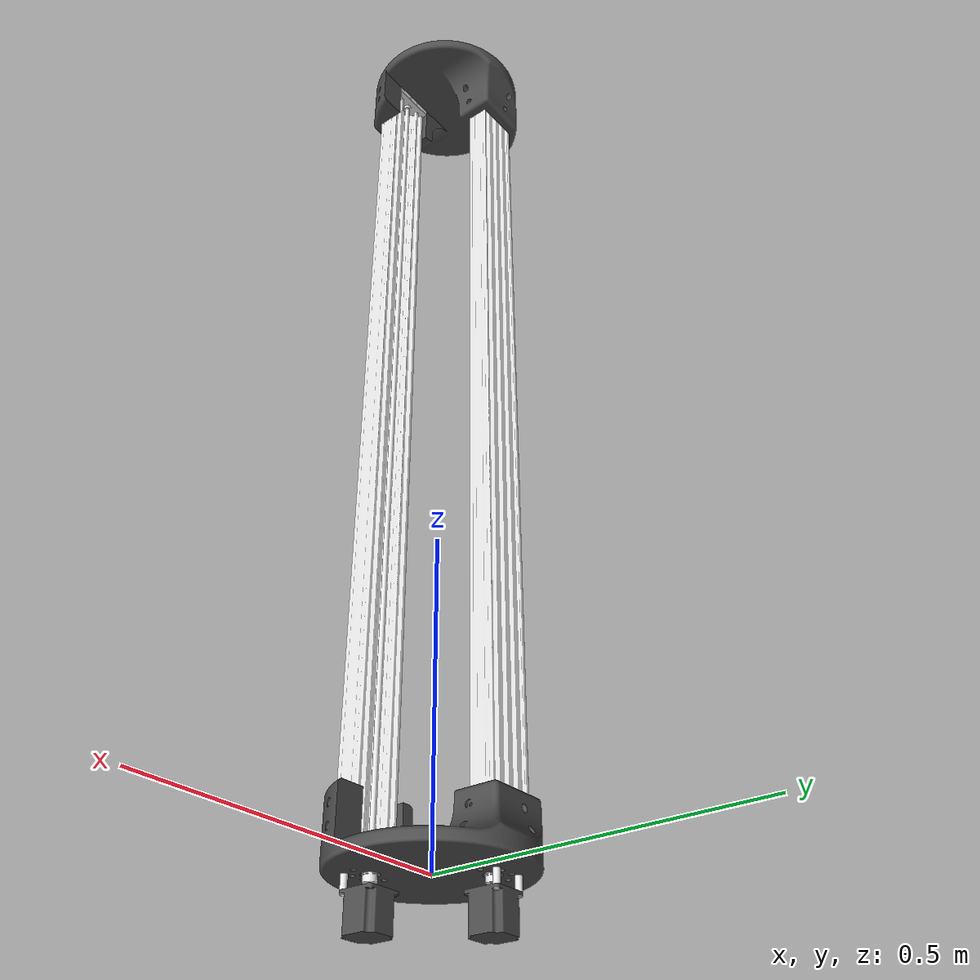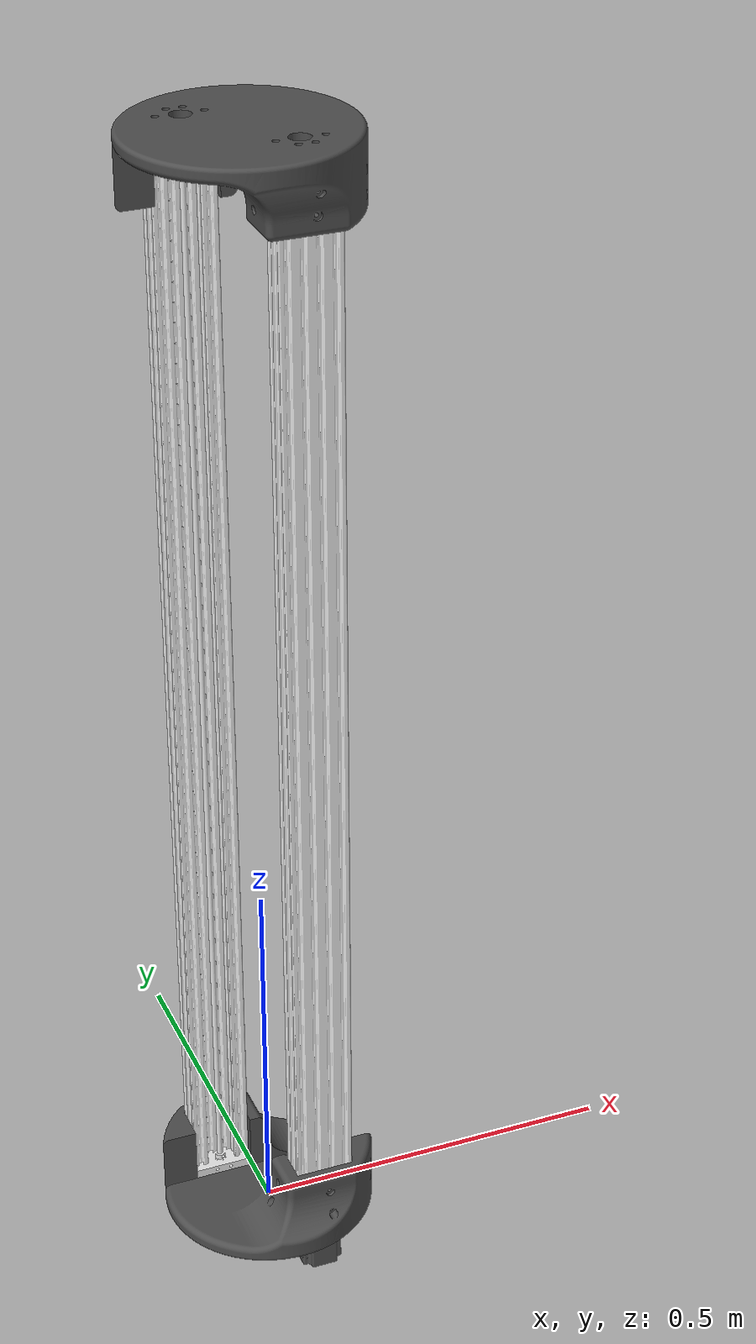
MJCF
<mujoco model="VerticalArm">
  <default>
    <default class="visual">
      <geom group="2" type="mesh" contype="0" conaffinity="0"/>
    </default>
    <default class="collision">
      <geom group="3" type="mesh"/>
    </default>
  </default>
  <asset>
    <material name="0.301961_0.301961_0.301961_0.000000_0.021" specular="0.0" shininess="0.0" rgba="0.302000 0.302000 0.302000 1.000000"/>
    <material name="0.301961_0.301961_0.301961_0.000000_0.022" specular="0.0" shininess="0.0" rgba="0.302000 0.302000 0.302000 1.000000"/>
    <material name="0.301961_0.301961_0.301961_0.000000_0.023" specular="0.0" shininess="0.0" rgba="0.302000 0.302000 0.302000 1.000000"/>
    <material name="0.301961_0.301961_0.301961_0.000000_0.024" specular="0.0" shininess="0.0" rgba="0.302000 0.302000 0.302000 1.000000"/>
    <material name="0.901961_0.901961_0.901961_0.000000_0.013" specular="0.0" shininess="0.0" rgba="0.902000 0.902000 0.902000 1.000000"/>
    <material name="0.901961_0.901961_0.901961_0.000000_0.014" specular="0.0" shininess="0.0" rgba="0.902000 0.902000 0.902000 1.000000"/>
    <mesh file="VerticalArm_0.obj"/>
    <mesh file="VerticalArm_1.obj"/>
    <mesh file="VerticalArm_2.obj"/>
    <mesh file="VerticalArm_3.obj"/>
    <mesh file="VerticalArm_4.obj"/>
    <mesh file="VerticalArm_5.obj"/>
  </asset>
  <worldbody>
    <body name="VerticalArm">
      <geom mesh="VerticalArm_0" material="0.301961_0.301961_0.301961_0.000000_0.024" class="visual"/>
      <geom mesh="VerticalArm_1" material="0.301961_0.301961_0.301961_0.000000_0.023" class="visual"/>
      <geom mesh="VerticalArm_2" material="0.301961_0.301961_0.301961_0.000000_0.022" class="visual"/>
      <geom mesh="VerticalArm_3" material="0.901961_0.901961_0.901961_0.000000_0.014" class="visual"/>
      <geom mesh="VerticalArm_4" material="0.301961_0.301961_0.301961_0.000000_0.021" class="visual"/>
      <geom mesh="VerticalArm_5" material="0.901961_0.901961_0.901961_0.000000_0.013" class="visual"/>
      <geom mesh="VerticalArm_0" class="collision"/>
      <geom mesh="VerticalArm_1" class="collision"/>
      <geom mesh="VerticalArm_2" class="collision"/>
      <geom mesh="VerticalArm_3" class="collision"/>
      <geom mesh="VerticalArm_4" class="collision"/>
      <geom mesh="VerticalArm_5" class="collision"/>
    </body>
  </worldbody>
</mujoco>
